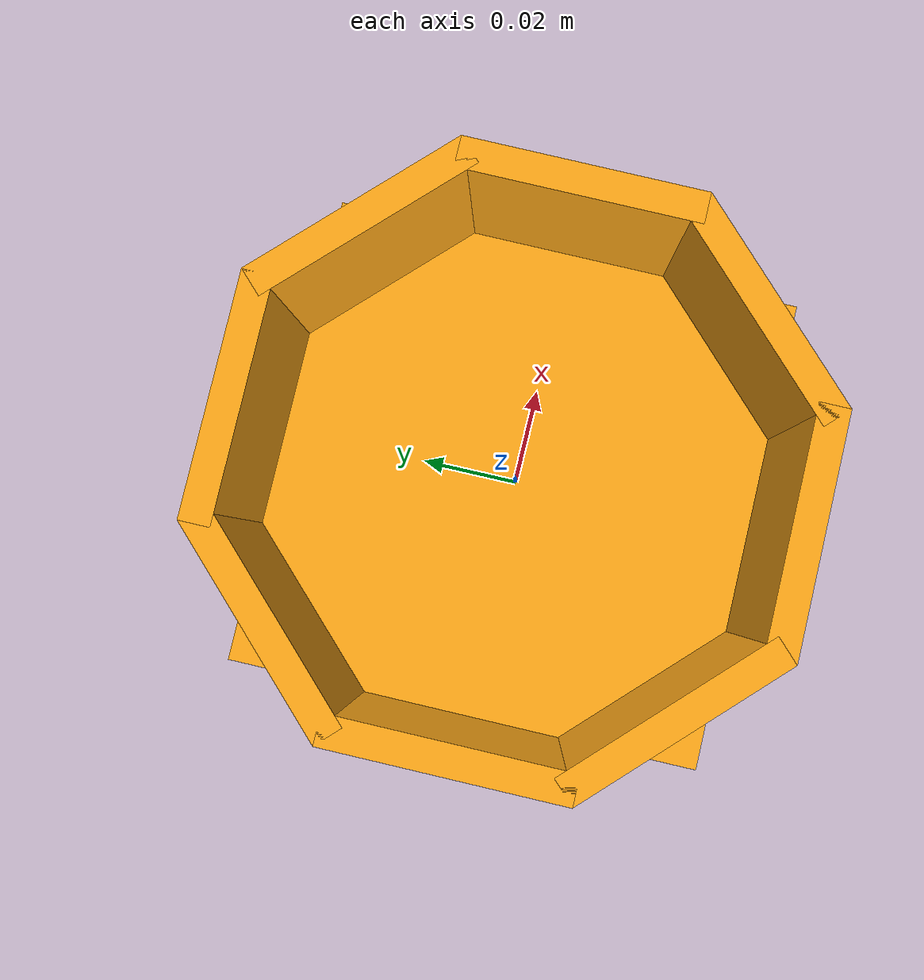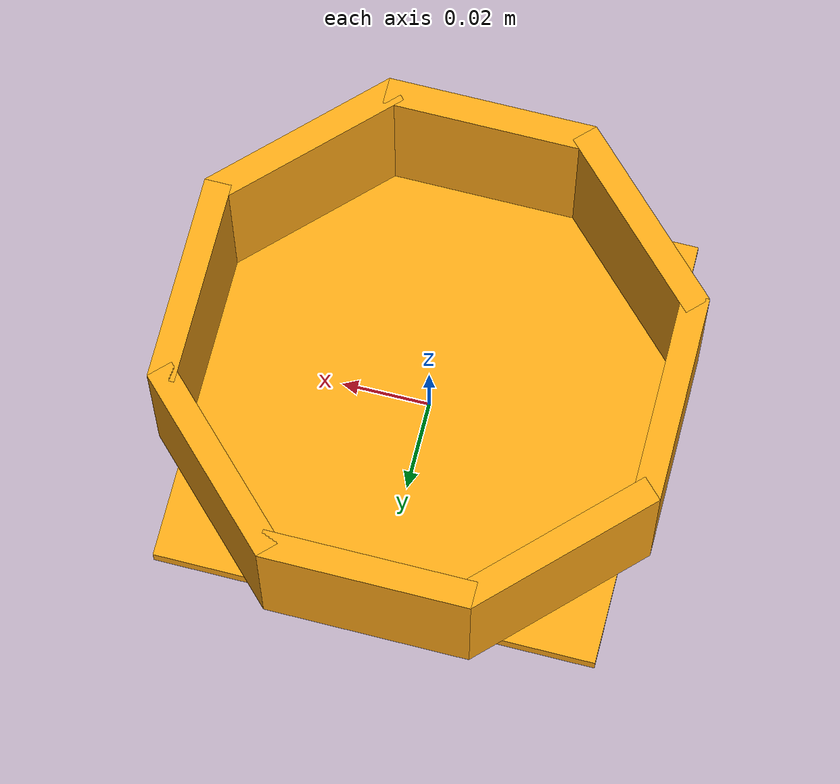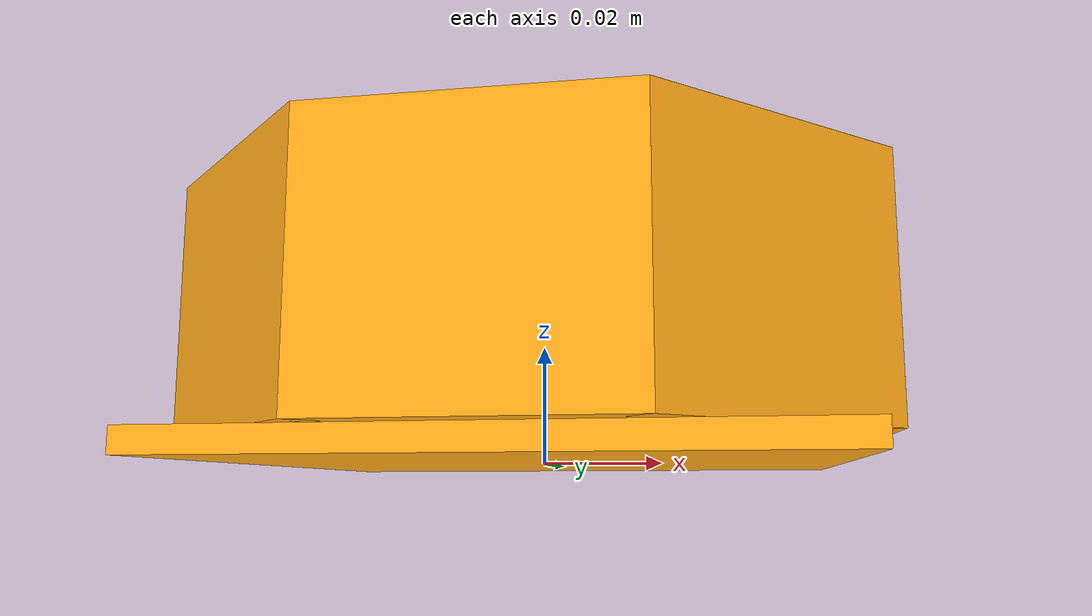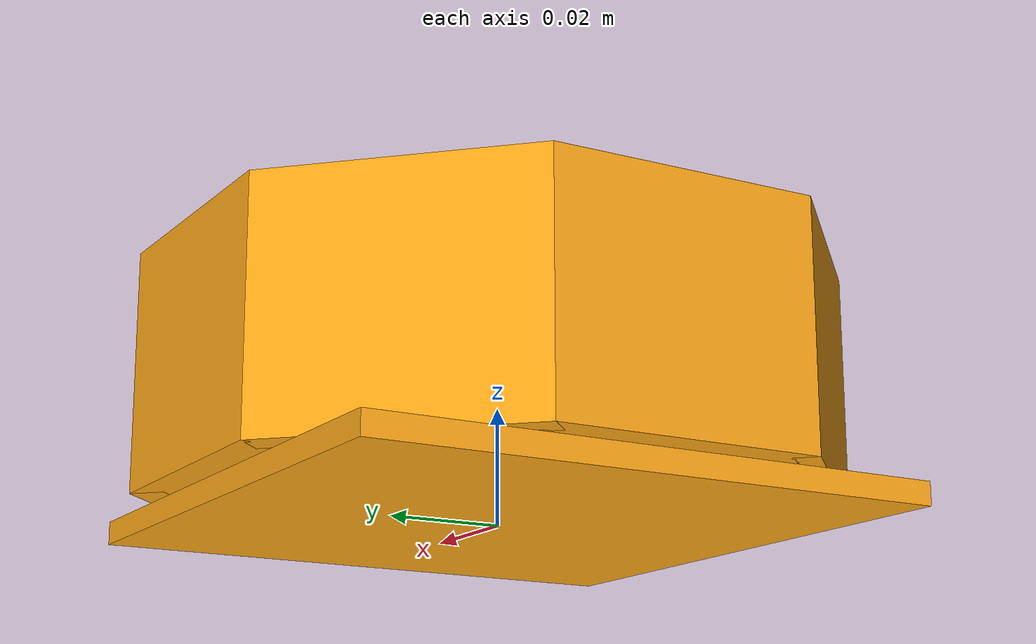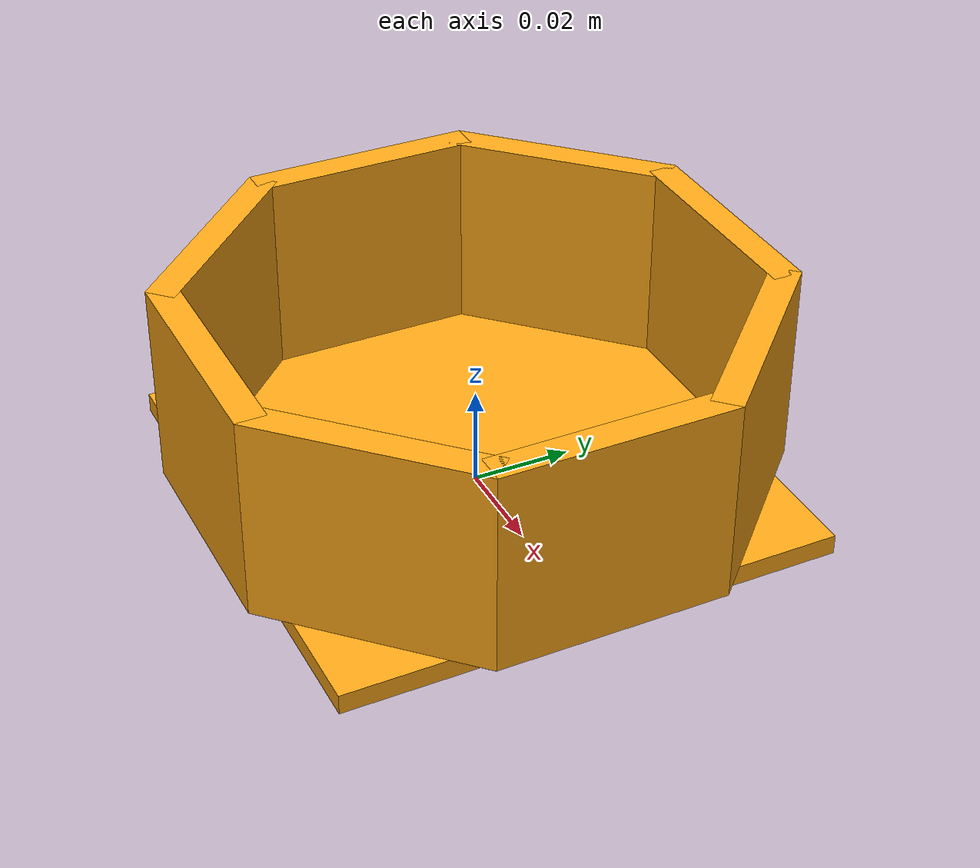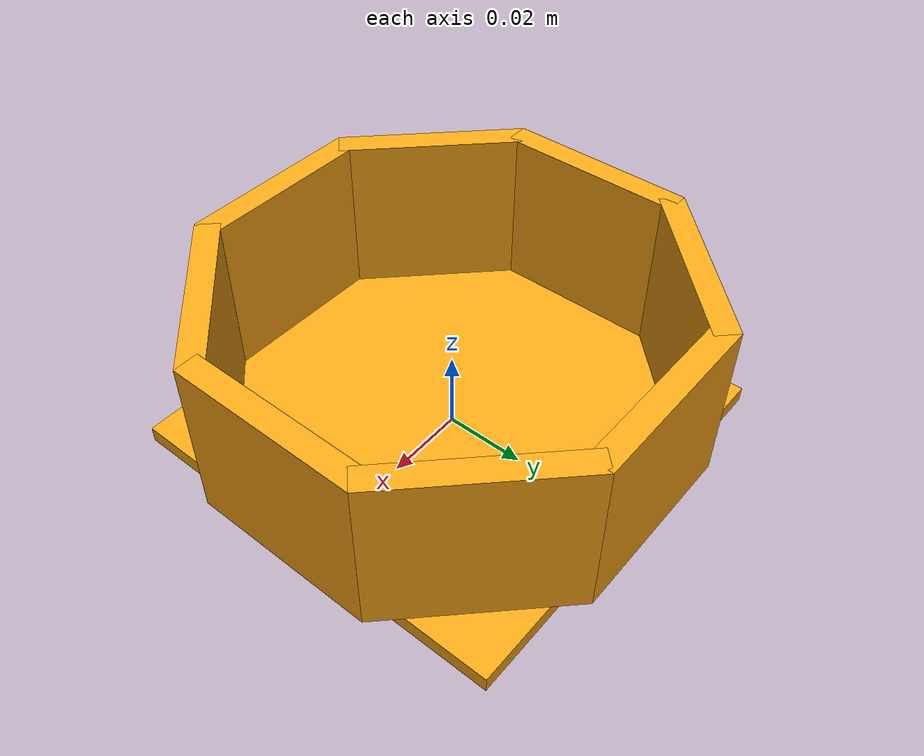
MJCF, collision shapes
<mujoco model="bowl">
  <compiler angle="radian" meshdir="so101_tower_props"/>
  <asset>
    <mesh name="bowl_octagon" file="bowl_octagon.stl" scale="0.001 0.001 0.001"/>
    <material name="bowl_pla" rgba="1.0 0.66 0.09 1" specular="0.1" shininess="0.1"/>
  </asset>
  <worldbody>
    <body name="bowl">
      <freejoint name="free"/>
      <geom name="shell" type="mesh" mesh="bowl_octagon" contype="0" conaffinity="0"
            density="0" group="0" material="bowl_pla"/>
      <geom name="floor" type="box" pos="0 0 0.002" size="0.05 0.05 0.002"
            density="670.2" group="3" material="bowl_pla" solref="0.01 1" solimp="0.998 0.998 0.001"/>
      <geom name="wall0" type="box" pos="0.053 0 0.0245" euler="0 0 0.0000000"
            size="0.003 0.023196 0.0205" density="670.2" group="3" material="bowl_pla" solref="0.01 1" solimp="0.998 0.998 0.001"/>
      <geom name="wall1" type="box" pos="0.0374767 0.0374767 0.0245" euler="0 0 0.7853982"
            size="0.003 0.023196 0.0205" density="670.2" group="3" material="bowl_pla" solref="0.01 1" solimp="0.998 0.998 0.001"/>
      <geom name="wall2" type="box" pos="3.24531e-18 0.053 0.0245" euler="0 0 1.5707963"
            size="0.003 0.023196 0.0205" density="670.2" group="3" material="bowl_pla" solref="0.01 1" solimp="0.998 0.998 0.001"/>
      <geom name="wall3" type="box" pos="-0.0374767 0.0374767 0.0245" euler="0 0 2.3561945"
            size="0.003 0.023196 0.0205" density="670.2" group="3" material="bowl_pla" solref="0.01 1" solimp="0.998 0.998 0.001"/>
      <geom name="wall4" type="box" pos="-0.053 6.49063e-18 0.0245" euler="0 0 3.1415927"
            size="0.003 0.023196 0.0205" density="670.2" group="3" material="bowl_pla" solref="0.01 1" solimp="0.998 0.998 0.001"/>
      <geom name="wall5" type="box" pos="-0.0374767 -0.0374767 0.0245" euler="0 0 3.9269908"
            size="0.003 0.023196 0.0205" density="670.2" group="3" material="bowl_pla" solref="0.01 1" solimp="0.998 0.998 0.001"/>
      <geom name="wall6" type="box" pos="-9.73594e-18 -0.053 0.0245" euler="0 0 4.7123890"
            size="0.003 0.023196 0.0205" density="670.2" group="3" material="bowl_pla" solref="0.01 1" solimp="0.998 0.998 0.001"/>
      <geom name="wall7" type="box" pos="0.0374767 -0.0374767 0.0245" euler="0 0 5.4977871"
            size="0.003 0.023196 0.0205" density="670.2" group="3" material="bowl_pla" solref="0.01 1" solimp="0.998 0.998 0.001"/>
    </body>
  </worldbody>
</mujoco>
